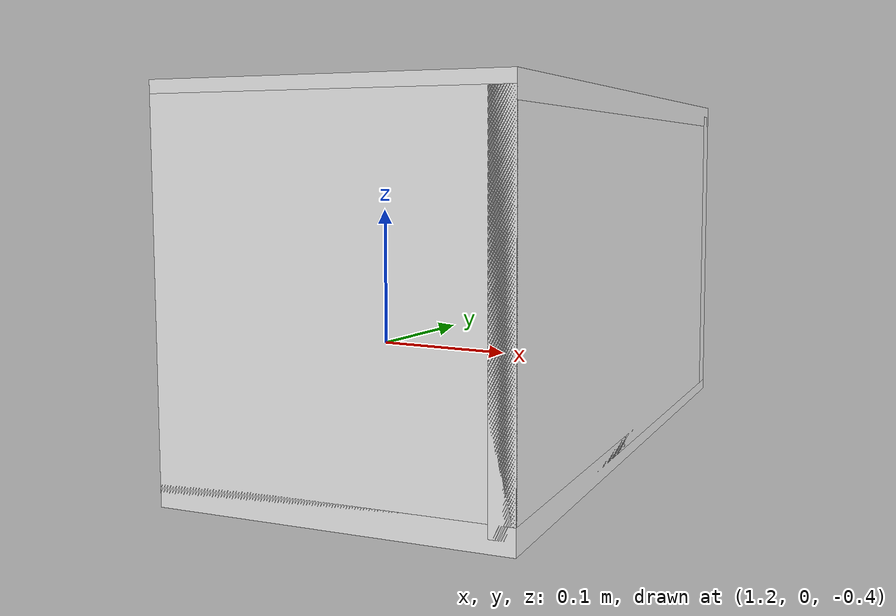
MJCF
<mujoco model="cabinet">
    <compiler angle="radian" eulerseq='zxy' />
    <option gravity = "0 0 0" />
    <option>
        <flag contact = "disable"/>
    </option>
    <statistic	extent="1.0" center="0.0 0.0 0.0"/>
    <visual>
        <map fogstart="3" fogend="5" force="0.1" znear=" 0.100000 " zfar=" 12.000000 "/>
    </visual>
    <size njmax="500" nconmax="100" />
    <actuator>
        <velocity joint="bottom_left_hinge" name="viva_revolution" kv='10'></velocity>
    </actuator>
    <asset>
        <texture builtin="flat" name="tabletex" height="32" width="32" rgb1="1 1 1" type="cube"></texture>
        <texture builtin="flat" name="objtex" height="32" width="32" rgb1="1 1 1" type="cube"></texture>
        <texture builtin="flat" name="handletex" height="32" width="32" rgb1="1 1 1" type="cube"></texture>
        <texture builtin="flat" name="wallpaper" height="32" width="32" rgb1="1 0 0" type="cube"></texture>
        <texture builtin="flat" name="kp" height="32" width="32" rgb1="1 1 1" type="cube"></texture>
        <material name="geomTable" shininess="0.03" specular="0.75" texture="tabletex"></material>
        <material name="geomObj" shininess="0.03" specular="0.75" texture="objtex"></material>
        <material name="geomHandle" shininess="0.03" specular="0.75" texture="handletex"></material>
        <material name="ax" shininess="0.03" specular="0.75" texture="wallpaper"></material>
        <material name="bg" shininess="0.03" specular="0.75" texture="wallpaper"></material>
        <material name="geomKeypad" shininess="0.03" specular="0.75" texture="kp"></material>
    </asset>
    <worldbody>
        <body name="cabinet_bottom" pos= " 1.355276 -0.123594 -0.419445 "  quat= " -0.054147 0.000000 0.000000 0.998533" >
            <inertial pos="0 0 0" mass="1" diaginertia="1 1 1" />
            <geom size= " 0.089485 0.186231 0.006398 "  type="box" material="geomObj" name="b"/>
            <body name="cabinet_left" pos= " 0.000000 -0.179833 0.093015 " >
                <inertial pos="0 0 0" mass="1" diaginertia="1 1 1" />
                <geom size= " 0.089485 0.006398 0.093015 "  type="box" material="geomObj" name="c" />
            </body>
            <body name="cabinet_right" pos= " 0.000000 0.179833 0.093015 " >
                <inertial pos="0 0 0" mass="1" diaginertia="1 1 1" />
                <geom size= " 0.089485 0.006398 0.093015 "  type="box" material="geomObj" name="d" />
            </body>
            <body name="cabinet_top" pos= " 0.000000 0.000000 0.186031 " >
                <inertial pos="0 0 0" mass="1" diaginertia="1 1 1" />
                <geom size= " 0.089485 0.186231 0.006398 "  type="box" material="geomObj" name="e"/>
            </body>
            <body name="cabinet_back" pos= " -0.083087 0.000000 0.093015 "  >
                <inertial pos="0 0 0" mass="1" diaginertia="1 1 1" />
                <geom size= " 0.006398 0.186231 0.093015 "  type="box" material="geomObj" name="f" />
            </body>
            <body name="cabinet_keypad" pos= " 0.006398 0.138673 0.093015 " >
                <inertial pos="0 0 0" mass="1" diaginertia="1 1 1" />
                <geom size= " 0.083087 0.046558 0.086618 "  type="box" material="geomKeypad" name="keypizzlemynizzle" />
            </body>
            <body name="cabinet_left_hinge" pos= " 0.089485 -0.186231 0.093015 " >
                <inertial pos= " 0.000000 0.139673 0.000000 "  mass="1" diaginertia="1 1 1" />
                <joint name="bottom_left_hinge" type="hinge" pos="0 0 0" axis="0 0 1" limited="true" range= "-2.3 0"  />
                <geom size= " 0.006398 0.139673 0.093015 "  pos= " 0.000000 0.139673 0.000000 "  type="box" material="geomObj" name="g"/>
                <body name="handle_link" pos= " 0.010000 0.249346 0.000000 " >
                    <inertial pos="0 0 0" mass="1" diaginertia="1 1 1" />
                    <geom size= " 0.010000 0.010000 0.093015 "  type="box" material="geomHandle" name="h"/>
                </body>
            </body>
        </body>
        <body name="external_camera_body_0" pos="0.0 0 0.00" >
            <camera euler="-1.57 1.57 0.0" fovy=" 54.280851 " name="external_camera_0" pos="0.0 0 0"></camera>
            <inertial pos= " 0.00 0.0 0.000000 " mass="1" diaginertia="1 1 1" />
            <joint name="cam_j" pos="0.0 0 0" axis = "1 0 0" type="free" />
        </body>
    </worldbody>
</mujoco>
